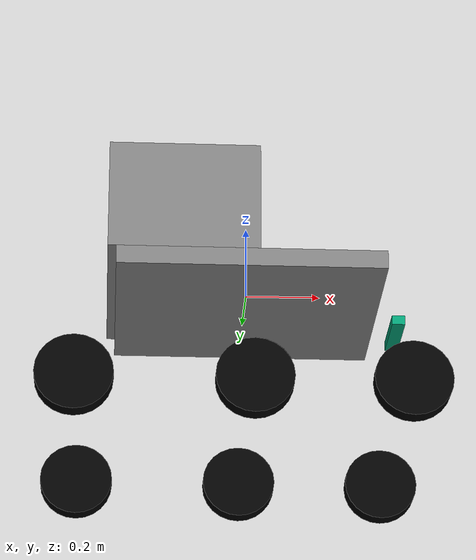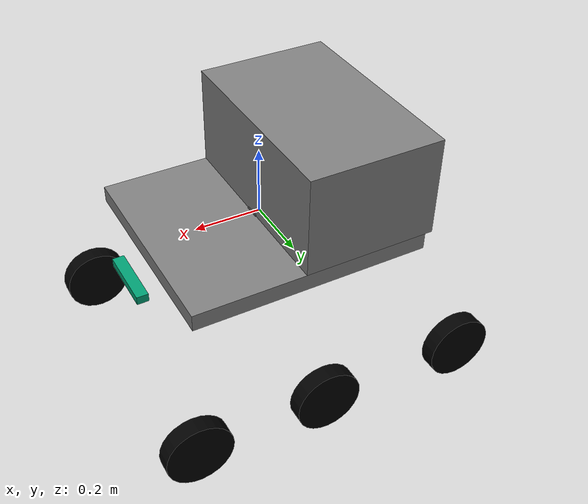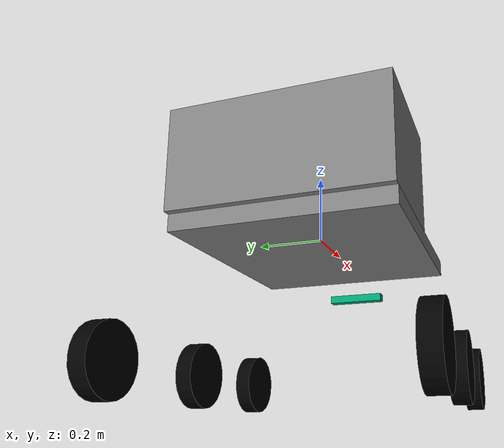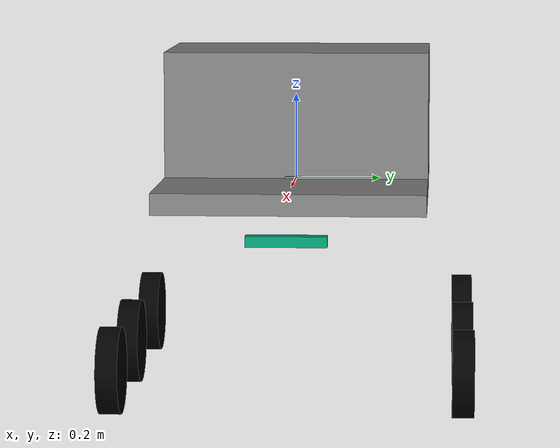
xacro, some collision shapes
<?xml version="1.0"?>
<robot name="pegasus3"
    xmlns:xacro="http://www.ros.org/wiki/xacro">
    <!-- Put here the robot description -->

    <xacro:arg name="laser_enabled" default="false" />
    <xacro:arg name="kinect_enabled" default="true" />

    <!-- Degree-to-radian conversions -->
    <xacro:property name="degrees_45" value="0.785398163"/>
    <xacro:property name="degrees_90" value="1.57079633"/>
    <xacro:property name="M_PI" value="3.1415926535897931" />

    <!-- body_length is measured along the x axis, body_width
       along the y axis, and body_height along the z axis. -->
    <xacro:property name="body_length" value="0.71"/>
    <xacro:property name="body_width" value="0.63"/>
    <xacro:property name="body_height" value="0.05"/>
    <xacro:property name="body_mass" value="10"/>
    <xacro:property name="body_clearance" value="0.40"/>

    <!-- electronics_length is measured along the x axis, electronics_width
       along the y axis, and electronics_height along the z axis. -->
    <xacro:property name="electronics_length" value="0.4"/>
    <xacro:property name="electronics_width" value="0.63"/>
    <xacro:property name="electronics_height" value="0.3"/>
    <xacro:property name="electronics_mass" value="10"/>
    <xacro:property name="electronics_clearance" value="0.40"/>

    <xacro:property name="wheelbase_rocker" value="1.0"/>
    <xacro:property name="wheelbase_bogie" value="0.40"/>
    <xacro:property name="x_center_rocker" value="0.045"/>
    <xacro:property name="x_center_bogie" value="0.20"/>
    <xacro:property name="track" value="0.800"/>

    <xacro:property name="hub_dia" value="0.180"/>
    <xacro:property name="tire_dia" value="0.2"/>
    <xacro:property name="tire_width" value="0.05"/>
    <xacro:property name="wheel_mass" value="0.200"/>

    <xacro:property name="axle_eff_limit" value="200"/>
    <xacro:property name="axle_vel_limit" value="244.8696"/>

    <material name="body_mat">
        <color rgba="0.5 0.5 0.5 1"/>
    </material>
    <material name="tire_mat">
        <color rgba="0 0 0 1"/>
    </material>

    <!-- Null inertial element. This is needed to make the model work with
       Gazebo. -->
    <xacro:macro name="null_inertial">
        <inertial>
            <mass value="0.001"/>
            <inertia ixx="0.001" ixy="0" ixz="0" iyy="0.001" iyz="0" izz="0.001"/>
        </inertial>
    </xacro:macro>

    <!-- Inertia of a solid cuboid. Width is measured along the x axis, depth
       along the y axis, and height along the z axis. -->
    <xacro:macro name="solid_cuboid_inertial" params="width depth height mass *origin">
        <inertial>
            <xacro:insert_block name="origin"/>
            <mass value="${mass}"/>
            <inertia ixx="${mass * (depth * depth + height * height) / 12}" ixy="0" ixz="0" iyy="${mass * (width * width + height * height) / 12}" iyz="0" izz="${mass * (width * width + depth * depth) / 12}"/>
        </inertial>
    </xacro:macro>

    <xacro:macro name="thick_walled_tube_inertial" params="inner_rad outer_rad height mass">
        <inertial>
            <mass value="${mass}"/>
            <inertia ixx="${(1 / 12) * mass * (3 * (inner_rad * inner_rad +
                    outer_rad * outer_rad) + height * height)}" ixy="0" ixz="0" iyy="${(1 / 12) * mass * (3 * (inner_rad * inner_rad +
                    outer_rad * outer_rad) + height * height)}" iyz="0" izz="${mass * (inner_rad * inner_rad +
                    outer_rad * outer_rad) / 2}"/>
        </inertial>
    </xacro:macro>

    <!-- The "wheel" macro defines an axle carrier, axle, and wheel. -->
    <xacro:macro name="wheel" params="lr_prefix fr_prefix lr_pos fr_pos">
        <joint name="${lr_prefix}_${fr_prefix}_axle" type="continuous">
            <parent link="base_link"/>
            <child link="${lr_prefix}_${fr_prefix}_wheel"/>
            <origin xyz="${fr_pos}
                   ${lr_pos}
                   ${- body_clearance}" rpy="${degrees_90} 0 0"/>
            <axis xyz="0 0 -1"/>
            <limit effort="${axle_eff_limit}" velocity="${axle_vel_limit}"/>
        </joint>
        <transmission name="${lr_prefix}_${fr_prefix}_axle_trans">
            <type>transmission_interface/SimpleTransmission</type>
            <joint name="${lr_prefix}_${fr_prefix}_axle">
                <hardwareInterface>hardware_interface/VelocityJointInterface</hardwareInterface>
            </joint>
            <actuator name="${lr_prefix}_${fr_prefix}_axle_act">
                <hardwareInterface>hardware_interface/VelocityJointInterface</hardwareInterface>
                <mechanicalReduction>1</mechanicalReduction>
            </actuator>
        </transmission>

        <link name="${lr_prefix}_${fr_prefix}_wheel">
            <visual>
                <origin xyz="0 0 0"/>
                <geometry>
                    <cylinder radius="${tire_dia / 2}" length="${tire_width}"/>
                </geometry>
                <material name="tire_mat"/>
            </visual>

            <collision>
                <origin xyz="0 0 0"/>
                <geometry>
                    <cylinder radius="${tire_dia / 2}" length="${tire_width}"/>
                </geometry>
            </collision>

            <xacro:thick_walled_tube_inertial inner_rad="${hub_dia / 2}" outer_rad="${tire_dia / 2}" height="${tire_width}" mass="${wheel_mass}"/>
        </link>

        <gazebo reference="${lr_prefix}_${fr_prefix}_wheel">
            <material>Gazebo/Black</material>
        </gazebo>
    </xacro:macro>

    <!-- base_link must have geometry so that its axes can be displayed in
       rviz. -->
    <link name="base_link">
        <visual>
            <geometry>
                <box size="0.05 0.05 0.01"/>
            </geometry>
            <material name="body_mat"/>
        </visual>
    </link>
    <gazebo reference="base_link">
        <material>Gazebo/Green</material>
    </gazebo>

    <joint name="imu_joint" type="fixed">
        <axis xyz="1 0 0"/>
        <origin xyz="0 0 0.05"/>
        <parent link="base_link"/>
        <child link="imu_link"/>
    </joint>

    <link name="imu_link">
        <inertial>
            <mass value="0.001"/>
            <origin rpy="0 0 0" xyz="0 0 0"/>
            <inertia ixx="0.0001" ixy="0" ixz="0" iyy="0.000001" iyz="0" izz="0.0001"/>
        </inertial>
        <visual>
            <origin rpy="0 0 0" xyz="0 0 0"/>
            <geometry>
                <box size="0.001 0.001 0.001"/>
            </geometry>
        </visual>
        <collision>
            <origin rpy="0 0 0" xyz="0 0 0"/>
            <geometry>
                <box size=".001 .001 .001"/>
            </geometry>
        </collision>
    </link>

    <!-- body -->
    <link name="body">
        <visual>
            <origin xyz="0 0 ${-body_height / 2}"/>
            <geometry>
                <box size="${body_length} ${body_width} ${body_height}"/>
            </geometry>
            <material name="body_mat"/>
        </visual>

        <collision>
            <origin xyz="0 0 ${-body_height / 2}"/>
            <geometry>
                <box size="${body_length} ${body_width} ${body_height}"/>
            </geometry>
        </collision>

        <xacro:solid_cuboid_inertial width="${body_length}" depth="${body_width}" height="${body_height}" mass="${body_mass}">
            <origin xyz="0 0 ${-body_height / 2}"/>
        </xacro:solid_cuboid_inertial>
    </link>
    <gazebo reference="body">
        <material>Gazebo/Grey</material>
    </gazebo>

    <joint name="base_link_to_chasis" type="fixed">
        <parent link="base_link"/>
        <child link="body"/>
    </joint>

    <!-- electronics case -->
    <link name="electronics">
        <visual>
            <origin xyz="${- body_length / 4} 0 ${electronics_height / 2}"/>
            <geometry>
                <box size="${electronics_length} ${electronics_width} ${electronics_height}"/>
            </geometry>
            <material name="body_mat"/>
        </visual>

        <collision>
            <origin xyz="${- body_length / 4} 0 ${electronics_height / 2}"/>
            <geometry>
                <box size="${electronics_length} ${electronics_width} ${electronics_height}"/>
            </geometry>
        </collision>

        <xacro:solid_cuboid_inertial width="${electronics_length}" depth="${electronics_width}" height="${electronics_height}" mass="${electronics_mass}">
            <origin xyz="0 0 ${-body_height / 2}"/>
        </xacro:solid_cuboid_inertial>
    </link>
    <gazebo reference="electronics">
        <material>Gazebo/Red</material>
    </gazebo>

    <joint name="chassis_link_to_electronics" type="fixed">
        <parent link="body"/>
        <child link="electronics"/>
    </joint>

    <!-- Wheels -->
    <xacro:wheel lr_prefix="left_bogie" fr_prefix="front" lr_pos="${track / 2}" fr_pos="${x_center_bogie + wheelbase_bogie / 2}" />
    <xacro:wheel lr_prefix="left_bogie" fr_prefix="rear" lr_pos="${track / 2}" fr_pos="${x_center_bogie - wheelbase_bogie / 2}" />
    <xacro:wheel lr_prefix="left_rocker" fr_prefix="rear" lr_pos="${track / 2}" fr_pos="${x_center_rocker - wheelbase_rocker / 2}" />
    <xacro:wheel lr_prefix="right_bogie" fr_prefix="front" lr_pos="${- track / 2}" fr_pos="${x_center_bogie + wheelbase_bogie / 2}" />
    <xacro:wheel lr_prefix="right_bogie" fr_prefix="rear" lr_pos="${- track / 2}" fr_pos="${x_center_bogie - wheelbase_bogie / 2}" />
    <xacro:wheel lr_prefix="right_rocker" fr_prefix="rear" lr_pos="${- track / 2}" fr_pos="${x_center_rocker - wheelbase_rocker / 2}" />

    <gazebo>
        <plugin name="gazebo_ros_control" filename="libgazebo_ros_control.so">
            <legacyModeNS>true</legacyModeNS>
        </plugin>
    </gazebo>

    <xacro:if value="$(arg kinect_enabled)">
        <!-- Depth sensor -->
        <xacro:include filename="$(find pegasus_description)/urdf/depth_sensor.urdf.xacro" />
        <xacro:depth_sensor name="camera" parent="base_link">
            <origin xyz="${body_length / 2 + 0.05} 0.0 ${-2 * body_height}" rpy="0 0 0"/>
        </xacro:depth_sensor>
    </xacro:if>

    <xacro:if value="$(arg laser_enabled)">
        <joint name="hokuyo_joint" type="fixed">
            <axis xyz="0 1 0" />
            <origin xyz=".15 0 .1" rpy="0 0 0"/>
            <parent link="base_link"/>
            <child link="hokuyo"/>
        </joint>

        <!-- Hokuyo Laser -->
        <link name="hokuyo">
            <collision>
                <origin xyz="0 0 0" rpy="0 0 0"/>
                <geometry>
                    <box size="0.1 0.1 0.1"/>
                </geometry>
            </collision>

            <visual>
                <origin xyz="0 0 0" rpy="0 0 0"/>
                <geometry>
                    <mesh filename="package://pegasus_description/meshes/hokuyo.dae"/>
                </geometry>
            </visual>

            <inertial>
                <mass value="1e-5" />
                <origin xyz="0 0 0" rpy="0 0 0"/>
                <inertia ixx="1e-6" ixy="0" ixz="0" iyy="1e-6" iyz="0" izz="1e-6" />
            </inertial>
        </link>
        <gazebo reference="hokuyo">
            <sensor type="ray" name="head_hokuyo_sensor">
                <pose>0 0 0 0 0 0</pose>
                <visualize>true</visualize>
                <update_rate>40</update_rate>
                <ray>
                    <scan>
                        <horizontal>
                            <samples>720</samples>
                            <resolution>1</resolution>
                            <min_angle>${-62.8 * M_PI/360.0}</min_angle>
                            <max_angle>${62.8 * M_PI/360.0}</max_angle>
                        </horizontal>
                    </scan>
                    <range>
                        <min>0.4</min>
                        <max>10.0</max>
                        <resolution>0.01</resolution>
                    </range>
                    <noise>
                        <type>gaussian</type>
                        <mean>0.0</mean>
                        <stddev>0.01</stddev>
                    </noise>
                </ray>
                <plugin name="gazebo_ros_head_hokuyo_controller" filename="libgazebo_ros_laser.so">
                    <topicName>/pegasus3/scan</topicName>
                    <frameName>hokuyo</frameName>
                </plugin>
            </sensor>
        </gazebo>
    </xacro:if>

    <!-- IMU sensor-->
    <gazebo>
        <plugin name="imu_sim" filename="libhector_gazebo_ros_imu.so" type="imu">
            <alwaysOn>true</alwaysOn>
            <topicName>imu/data</topicName>
            <updateRate>100.0</updateRate>
            <serviceName>imu_service</serviceName>
            <bodyName>imu_link</bodyName>
            <frameId>imu_link</frameId>

            <accelOffset>0.1 0.1 0.1</accelOffset>
            <accelDrift>0.0 0.0 0.0</accelDrift>
            <accelDriftFrequency>0.0 0.0 0.0</accelDriftFrequency>
            <accelGaussianNoise>0.35 0.35 0.3</accelGaussianNoise>

            <rateOffset>0.0 0.0 0.0</rateOffset>
            <rateDrift>0.01 0.01 0.01</rateDrift>
            <rateDriftFrequency>0.0 0.0 0.0</rateDriftFrequency>
            <rateGaussianNoise>0.05 0.05 0.015</rateGaussianNoise>

            <headingOffset>0.0 0.0 0.0</headingOffset>
            <headingDrift>0.0 0.0 0.0</headingDrift>
            <headingDriftFrequency>0.0 0.0 0.0</headingDriftFrequency>
            <headingGaussianNoise>0.05 0.05 0.05</headingGaussianNoise>
        </plugin>
    </gazebo>

    <plugin name="magnetic_sim" filename="libhector_gazebo_ros_magnetic.so">
        <alwaysOn>true</alwaysOn>
        <topicName>magnetic/data</topicName>
        <updateRate>100.0</updateRate>
        <bodyName>imu_link</bodyName>
        <frameId>imu_link</frameId>
        <magnitude>46967.9</magnitude>
        <declination>-2.3865</declination>
        <inclination>-61.7292</inclination>
        <offset>0.0 0.0 0.0</offset>
        <drift>0.0 0.0 0.0</drift>
        <gaussianNoise>100.0 100.0 100.0</gaussianNoise>
    </plugin>

    <plugin name="gps_sim" filename="libhector_gazebo_ros_gps.so">
        <updateRate>1.0</updateRate>
        <bodyName>imu_link</bodyName>
        <frameId>imu_link</frameId>
        <topicName>gps/fix</topicName>
        <velocityTopicName>gps/vel</velocityTopicName>
        <referenceLatitude>46.518125</referenceLatitude>
        <referenceLongitude>6.565539</referenceLongitude>
        <drift>0 0 0</drift>
        <gaussianNoise>0.0 0.0 0.0</gaussianNoise>
        <velocityDrift>0 0 0</velocityDrift>
        <velocityGaussianNoise>0.05 0.05 0.05</velocityGaussianNoise>
    </plugin>

</robot>

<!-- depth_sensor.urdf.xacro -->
<robot name="pegasus3"
  xmlns:xacro="http://www.ros.org/wiki/xacro">
  <xacro:property name="M_PI" value="3.1415926535897931" />

  <!-- This macro only adds the model-->
  <xacro:macro name="depth_sensor_model" params="name parent *origin">
    <joint name="${name}_joint" type="fixed">
      <xacro:insert_block name="origin" />
      <parent link="${parent}"/>
      <child link="${name}_link"/>
    </joint>

    <link name="${name}_link">
      <inertial>
        <mass value="0.200" />
        <origin xyz="0 0 0" rpy="0 0 0" />
        <inertia ixx="5.8083e-4" ixy="0" ixz="0" iyy="3.0833e-5" iyz="0" izz="5.9083e-4" />
      </inertial>
      <visual>
        <origin xyz="0 0 0" rpy="0 0 0" />
        <geometry>
          <mesh filename="package://hector_sensors_description/meshes/kinect_camera/kinect_camera_simple.dae"/>
        </geometry>
      </visual>
      <collision>
        <origin xyz="0 0 0" rpy="0 0 0" />
        <geometry>
          <box size="0.035 0.185 0.025"/>
        </geometry>
      </collision>
    </link>

    <joint name="${name}_depth_joint" type="fixed">
      <origin xyz="0.0 0.049 0.0" rpy="0 0 0" />
      <parent link="${name}_link" />
      <child link="${name}_depth_frame"/>
    </joint>

    <link name="${name}_depth_frame"/>

    <joint name="${name}_depth_optical_joint" type="fixed">
      <origin xyz="0 0 0" rpy="${-M_PI/2} 0.0 ${-M_PI/2}" />
      <parent link="${name}_depth_frame" />
      <child link="${name}_depth_optical_frame"/>
    </joint>

    <link name="${name}_depth_optical_frame"/>

    <joint name="${name}_rgb_joint" type="fixed">
      <origin xyz="0.0 0.022 0.0" rpy="0 0 0" />
      <parent link="${name}_link" />
      <child link="${name}_rgb_frame"/>
    </joint>

    <link name="${name}_rgb_frame"/>

    <joint name="${name}_rgb_optical_joint" type="fixed">
      <origin xyz="0 0 0" rpy="${-M_PI/2} 0.0 ${-M_PI/2}" />
      <parent link="${name}_rgb_frame" />
      <child link="${name}_rgb_optical_frame"/>
    </joint>

    <link name="${name}_rgb_optical_frame"/>
  </xacro:macro>

  <!-- The depth_sensor macro adds the model and also adds gazebo plugin -->
  <xacro:macro name="depth_sensor" params="name parent *origin">
    <xacro:depth_sensor_model name="${name}" parent="${parent}">
      <xacro:insert_block name="origin" />
    </xacro:depth_sensor_model>

    <gazebo reference="${name}_depth_frame">
      <sensor type="depth" name="${name}">
        <update_rate>20</update_rate>
        <camera>
          <horizontal_fov>${62.8 * M_PI/180.0}</horizontal_fov>
          <image>
            <format>R8G8B8</format>
            <width>640</width>
            <height>480</height>
          </image>
          <clip>
            <near>0.4</near>
            <far>10</far>
          </clip>
        </camera>
        <plugin name="${name}_camera_controller" filename="libgazebo_ros_openni_kinect.so">
          <baseline>0.2</baseline>
          <alwaysOn>true</alwaysOn>
          <cameraName>${name}</cameraName>
          <imageTopicName>${name}/rgb/image_raw</imageTopicName>
          <cameraInfoTopicName>${name}/rgb/camera_info</cameraInfoTopicName>
          <depthImageTopicName>${name}/depth/image_raw</depthImageTopicName>
          <depthImageCameraInfoTopicName>${name}/depth/camera_info</depthImageCameraInfoTopicName>
          <pointCloudTopicName>${name}/depth/points</pointCloudTopicName>
          <frameName>${name}_depth_optical_frame</frameName>
          <pointCloudCutoff>0.0</pointCloudCutoff>
          <pointCloudCutoffMax>5.0</pointCloudCutoffMax>
          <distortionK1>0</distortionK1>
          <distortionK2>0</distortionK2>
          <distortionK3>0</distortionK3>
          <distortionT1>0</distortionT1>
          <distortionT2>0</distortionT2>
          <CxPrime>0</CxPrime>
          <Cx>0</Cx>
          <Cy>0</Cy>
          <focalLength>0</focalLength>
          <hackBaseline>0</hackBaseline>
        </plugin>
      </sensor>
    </gazebo>
  </xacro:macro>
</robot>
